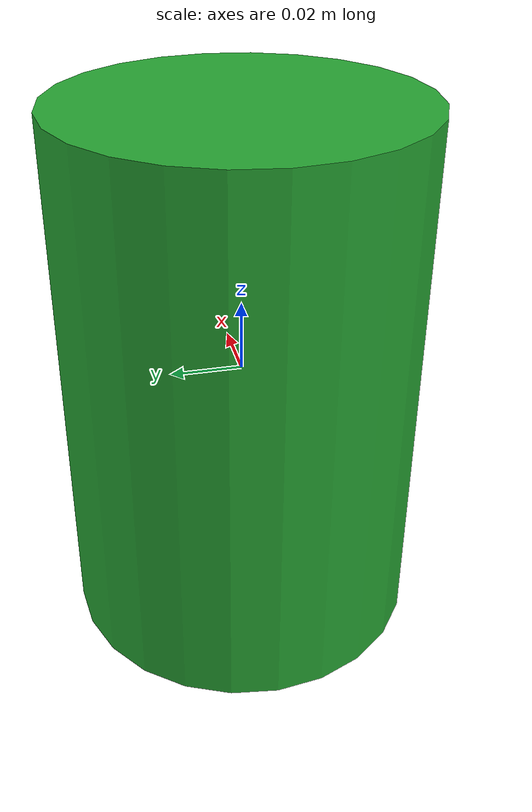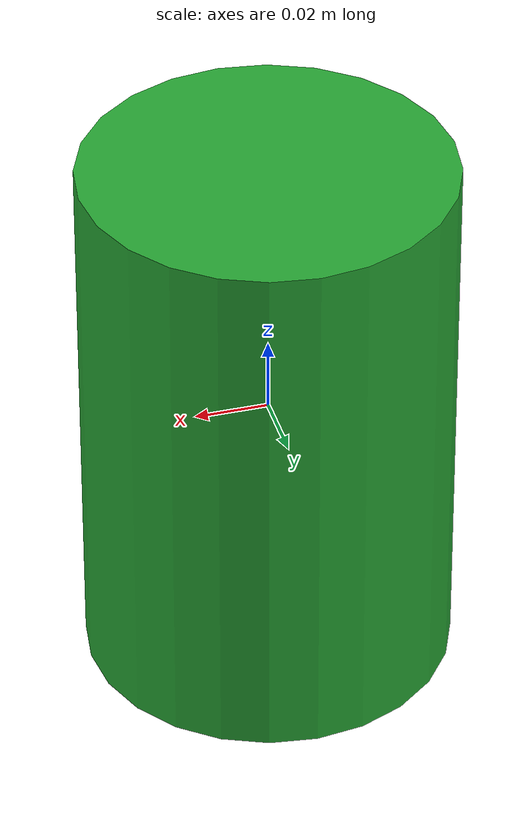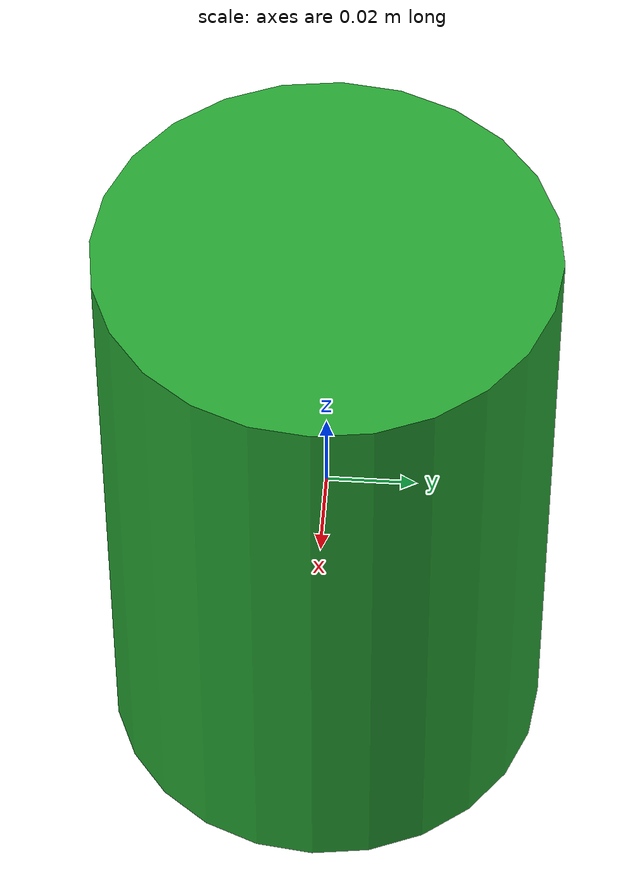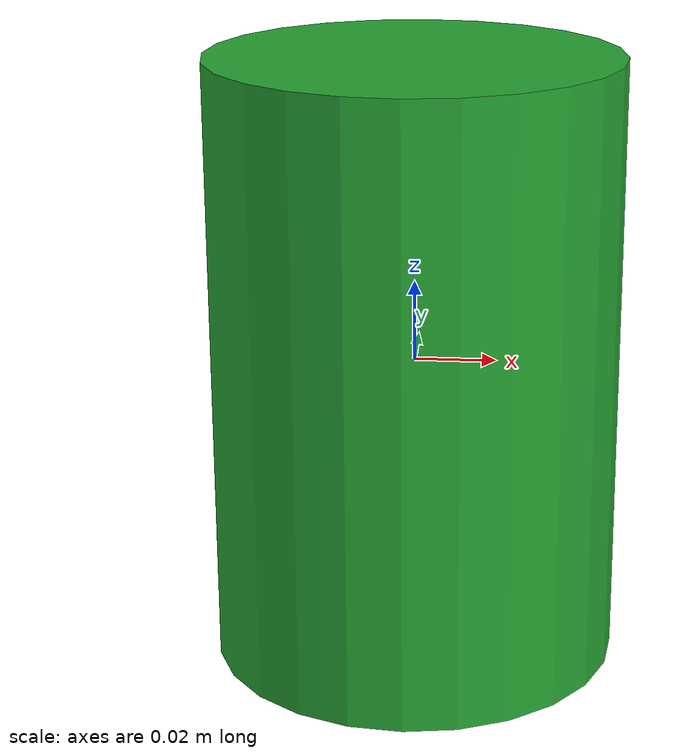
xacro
<?xml version='1.0'?>
	<robot name="usbl_beacon" xmlns:xacro="http://www.ros.org/wiki/xacro" >
		<xacro:property name="radius" value="0.05"	/>
		<xacro:property name="length" value="0.15" />

        <xacro:include filename="$(find under_ice_sim_gazebo)/models/usbl_beacon/usbl_beacon.gazebo" />

  <link name="beacon">

  	<collision>
      <origin xyz="0 0 0" rpy="0 0 0"/>
	  <geometry>
        <cylinder length="${length}" radius="${radius}" />
       </geometry>
    </collision>

    <visual>
      <origin xyz="0 0 0" rpy="0 0 0"/>
	  <geometry>
        <cylinder length="${length}" radius="${radius}" />
       </geometry>
      <color rgba="${255/255} ${108/255} ${10/255} 1.0"/>
    </visual>

    <inertial>
      <origin xyz="0 0 0" rpy="0 0 0"/>
      <mass value="1"/>
      <inertia
	  ixx="1" ixy="0.0" ixz="0.0"
	  iyy="1" iyz="0.0"
	  izz="1"/>
    </inertial>

  </link>
</robot>
